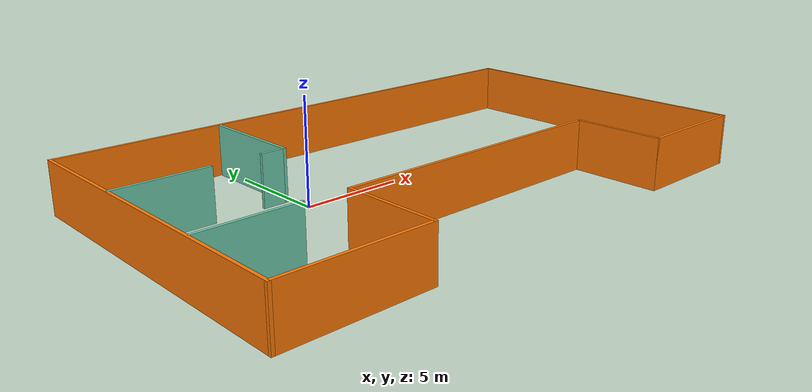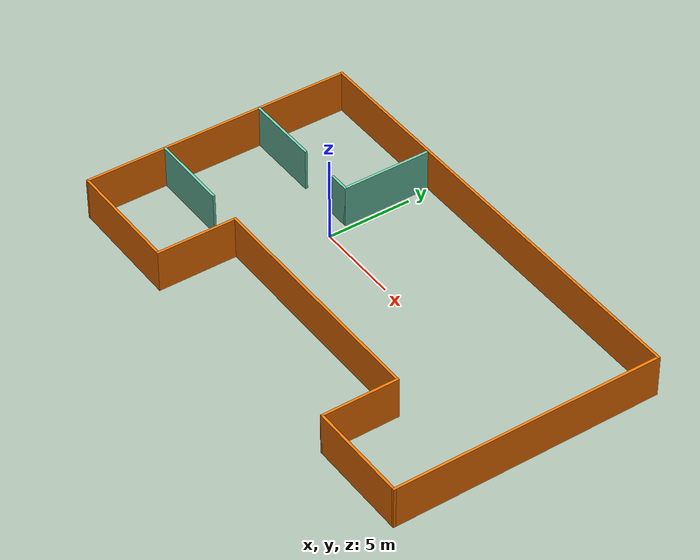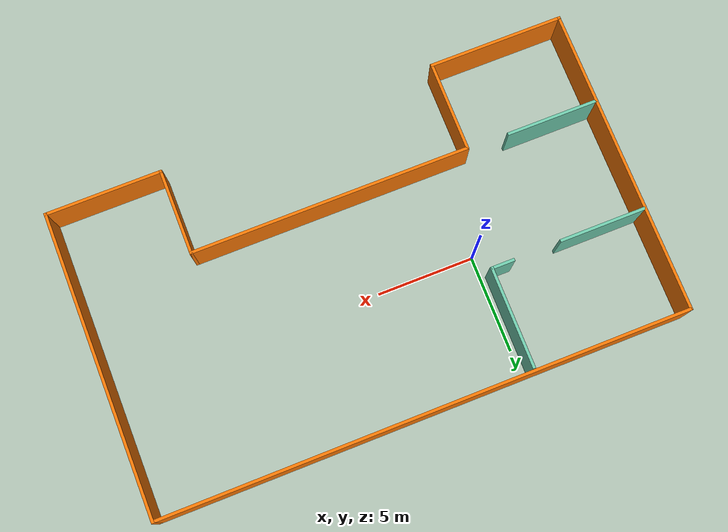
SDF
<?xml version='1.0'?>
<sdf version='1.6'>
  <model name='model'>
    <pose frame=''>5.17602 -1.4432 0 0 -0 0</pose>
    <link name='Wall_40'>
      <collision name='Wall_40_Collision'>
        <geometry>
          <box>
            <size>4.75 0.15 2.5</size>
          </box>
        </geometry>
        <pose frame=''>0 0 1.25 0 -0 0</pose>
      </collision>
      <visual name='Wall_40_Visual'>
        <pose frame=''>0 0 1.25 0 -0 0</pose>
        <geometry>
          <box>
            <size>4.75 0.15 2.5</size>
          </box>
        </geometry>
        <material>
          <script>
            <uri>file://media/materials/scripts/gazebo.material</uri>
            <name>Gazebo/Grey</name>
          </script>
          <ambient>0.996078 0.47451 0.0196078 1</ambient>
        </material>
        <meta>
          <layer>0</layer>
        </meta>
      </visual>
      <pose frame=''>-6.7 -5.625 0 0 -0 1.5708</pose>
    </link>
    <link name='Wall_42'>
      <collision name='Wall_42_Collision'>
        <geometry>
          <box>
            <size>4.5 0.15 2.5</size>
          </box>
        </geometry>
        <pose frame=''>0 0 1.25 0 -0 0</pose>
      </collision>
      <visual name='Wall_42_Visual'>
        <pose frame=''>0 0 1.25 0 -0 0</pose>
        <geometry>
          <box>
            <size>4.5 0.15 2.5</size>
          </box>
        </geometry>
        <material>
          <script>
            <uri>file://media/materials/scripts/gazebo.material</uri>
            <name>Gazebo/Grey</name>
          </script>
          <ambient>0.996078 0.47451 0.0196078 1</ambient>
        </material>
        <meta>
          <layer>0</layer>
        </meta>
      </visual>
      <pose frame=''>7.65 -5.5 0 0 0 -1.5708</pose>
    </link>
    <link name='Wall_49'>
      <collision name='Wall_49_Collision'>
        <geometry>
          <box>
            <size>7 0.15 2.5</size>
          </box>
        </geometry>
        <pose frame=''>0 0 1.25 0 -0 0</pose>
      </collision>
      <visual name='Wall_49_Visual'>
        <pose frame=''>0 0 1.25 0 -0 0</pose>
        <geometry>
          <box>
            <size>7 0.15 2.5</size>
          </box>
        </geometry>
        <material>
          <script>
            <uri>file://media/materials/scripts/gazebo.material</uri>
            <name>Gazebo/Grey</name>
          </script>
          <ambient>0.996078 0.47451 0.0196078 1</ambient>
        </material>
        <meta>
          <layer>0</layer>
        </meta>
      </visual>
      <pose frame=''>-10.125 -7.925 0 0 -0 3.14159</pose>
    </link>
    <link name='Wall_50'>
      <collision name='Wall_50_Collision'>
        <geometry>
          <box>
            <size>16 0.15 2.5</size>
          </box>
        </geometry>
        <pose frame=''>0 0 1.25 0 -0 0</pose>
      </collision>
      <visual name='Wall_50_Visual'>
        <pose frame=''>0 0 1.25 0 -0 0</pose>
        <geometry>
          <box>
            <size>16 0.15 2.5</size>
          </box>
        </geometry>
        <material>
          <script>
            <uri>file://media/materials/scripts/gazebo.material</uri>
            <name>Gazebo/Grey</name>
          </script>
          <ambient>0.996078 0.47451 0.0196078 1</ambient>
        </material>
        <meta>
          <layer>0</layer>
        </meta>
      </visual>
      <pose frame=''>-13.55 0 0 0 -0 1.5708</pose>
    </link>
    <link name='Wall_51'>
      <collision name='Wall_51_Collision'>
        <geometry>
          <box>
            <size>27.25 0.15 2.5</size>
          </box>
        </geometry>
        <pose frame=''>0 0 1.25 0 -0 0</pose>
      </collision>
      <visual name='Wall_51_Visual'>
        <pose frame=''>0 0 1.25 0 -0 0</pose>
        <geometry>
          <box>
            <size>27.25 0.15 2.5</size>
          </box>
        </geometry>
        <material>
          <script>
            <uri>file://media/materials/scripts/gazebo.material</uri>
            <name>Gazebo/Grey</name>
          </script>
          <ambient>0.996078 0.47451 0.0196078 1</ambient>
        </material>
        <meta>
          <layer>0</layer>
        </meta>
      </visual>
      <pose frame=''>0 7.925 0 0 -0 0</pose>
    </link>
    <link name='Wall_52'>
      <collision name='Wall_52_Collision'>
        <geometry>
          <box>
            <size>15.75 0.15 2.5</size>
          </box>
        </geometry>
        <pose frame=''>0 0 1.25 0 -0 0</pose>
      </collision>
      <visual name='Wall_52_Visual'>
        <pose frame=''>0 0 1.25 0 -0 0</pose>
        <geometry>
          <box>
            <size>15.75 0.15 2.5</size>
          </box>
        </geometry>
        <material>
          <script>
            <uri>file://media/materials/scripts/gazebo.material</uri>
            <name>Gazebo/Grey</name>
          </script>
          <ambient>0.996078 0.47451 0.0196078 1</ambient>
        </material>
        <meta>
          <layer>0</layer>
        </meta>
      </visual>
      <pose frame=''>13.55 0.125 0 0 0 -1.5708</pose>
    </link>
    <link name='Wall_55'>
      <collision name='Wall_55_Collision'>
        <geometry>
          <box>
            <size>6.05 0.15 2.5</size>
          </box>
        </geometry>
        <pose frame=''>0 0 1.25 0 -0 0</pose>
      </collision>
      <visual name='Wall_55_Visual'>
        <pose frame=''>0 0 1.25 0 -0 0</pose>
        <geometry>
          <box>
            <size>6.05 0.15 2.5</size>
          </box>
        </geometry>
        <material>
          <script>
            <uri>file://media/materials/scripts/gazebo.material</uri>
            <name>Gazebo/Grey</name>
          </script>
          <ambient>0.996078 0.47451 0.0196078 1</ambient>
        </material>
        <meta>
          <layer>0</layer>
        </meta>
      </visual>
      <pose frame=''>10.6 -7.675 0 0 -0 0</pose>
    </link>
    <link name='Wall_57'>
      <collision name='Wall_57_Collision'>
        <geometry>
          <box>
            <size>14.5 0.15 2.5</size>
          </box>
        </geometry>
        <pose frame=''>0 0 1.25 0 -0 0</pose>
      </collision>
      <visual name='Wall_57_Visual'>
        <pose frame=''>0 0 1.25 0 -0 0</pose>
        <geometry>
          <box>
            <size>14.5 0.15 2.5</size>
          </box>
        </geometry>
        <material>
          <script>
            <uri>file://media/materials/scripts/gazebo.material</uri>
            <name>Gazebo/Grey</name>
          </script>
          <ambient>0.996078 0.47451 0.0196078 1</ambient>
        </material>
        <meta>
          <layer>0</layer>
        </meta>
      </visual>
      <pose frame=''>0.475 -3.325 0 0 -0 0</pose>
    </link>
    <link name='Wall_63'>
      <collision name='Wall_63_Collision'>
        <geometry>
          <box>
            <size>4.75 0.15 2.5</size>
          </box>
        </geometry>
        <pose frame=''>0 0 1.25 0 -0 0</pose>
      </collision>
      <visual name='Wall_63_Visual'>
        <pose frame=''>0 0 1.25 0 -0 0</pose>
        <geometry>
          <box>
            <size>4.75 0.15 2.5</size>
          </box>
        </geometry>
        <material>
          <script>
            <uri>file://media/materials/scripts/gazebo.material</uri>
            <name>Gazebo/Grey</name>
          </script>
          <ambient>0.435294 0.796078 0.67451 1</ambient>
        </material>
        <meta>
          <layer>0</layer>
        </meta>
      </visual>
      <pose frame=''>-11.1821 -3.2534 0 0 -0 3.14159</pose>
    </link>
    <link name='Wall_67'>
      <collision name='Wall_67_Collision'>
        <geometry>
          <box>
            <size>4.5 0.15 2.5</size>
          </box>
        </geometry>
        <pose frame=''>0 0 1.25 0 -0 0</pose>
      </collision>
      <visual name='Wall_67_Visual'>
        <pose frame=''>0 0 1.25 0 -0 0</pose>
        <geometry>
          <box>
            <size>4.5 0.15 2.5</size>
          </box>
        </geometry>
        <material>
          <script>
            <uri>file://media/materials/scripts/gazebo.material</uri>
            <name>Gazebo/Grey</name>
          </script>
          <ambient>0.435294 0.796078 0.67451 1</ambient>
        </material>
        <meta>
          <layer>0</layer>
        </meta>
      </visual>
      <pose frame=''>-11.3274 2.61739 0 0 -0 0</pose>
    </link>
    <link name='Wall_69'>
      <collision name='Wall_69_Collision'>
        <geometry>
          <box>
            <size>1.25 0.15 2.5</size>
          </box>
        </geometry>
        <pose frame=''>0 0 1.25 0 -0 0</pose>
      </collision>
      <visual name='Wall_69_Visual'>
        <pose frame=''>0 0 1.25 0 -0 0</pose>
        <geometry>
          <box>
            <size>1.25 0.15 2.5</size>
          </box>
        </geometry>
        <material>
          <script>
            <uri>file://media/materials/scripts/gazebo.material</uri>
            <name>Gazebo/Grey</name>
          </script>
          <ambient>0.435294 0.796078 0.67451 1</ambient>
        </material>
        <meta>
          <layer>0</layer>
        </meta>
      </visual>
      <pose frame=''>-6.05738 2.65257 0 0 -0 0</pose>
    </link>
    <link name='Wall_71'>
      <collision name='Wall_71_Collision'>
        <geometry>
          <box>
            <size>5.25 0.15 2.5</size>
          </box>
        </geometry>
        <pose frame=''>0 0 1.25 0 -0 0</pose>
      </collision>
      <visual name='Wall_71_Visual'>
        <pose frame=''>0 0 1.25 0 -0 0</pose>
        <geometry>
          <box>
            <size>5.25 0.15 2.5</size>
          </box>
        </geometry>
        <material>
          <script>
            <uri>file://media/materials/scripts/gazebo.material</uri>
            <name>Gazebo/Grey</name>
          </script>
          <ambient>0.435294 0.796078 0.67451 1</ambient>
        </material>
        <meta>
          <layer>0</layer>
        </meta>
      </visual>
      <pose frame=''>-5.50738 5.20257 0 0 -0 1.5708</pose>
    </link>
    <static>1</static>
  </model>
</sdf>
